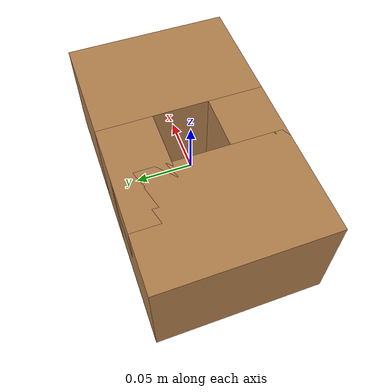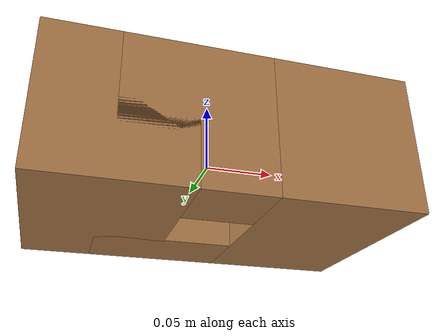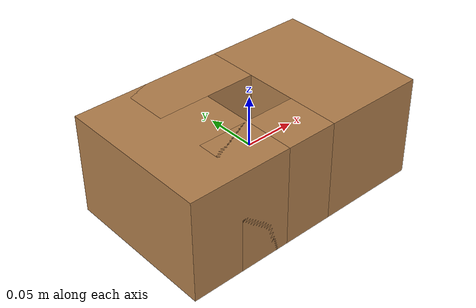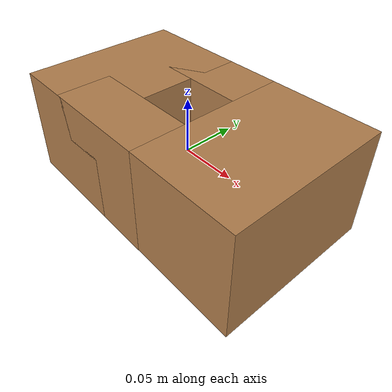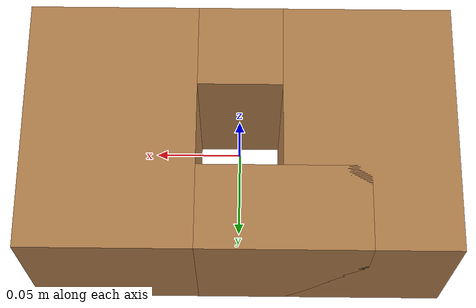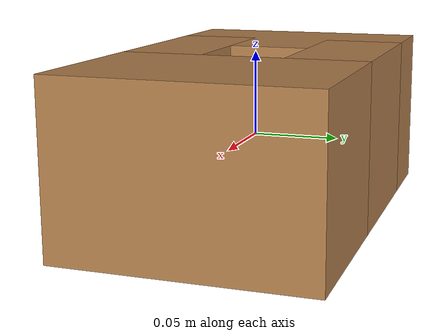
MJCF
<mujoco model="insertion_hole1">
  <asset>
    <!-- Scaled down since it was exported in "millimeters" in solidworks. -->
    <texture file="../textures/red-wood.png" type="cube" name="red-wood" />
    <material name="plate_mat" texture="red-wood" texrepeat="3 3" specular="0.4" shininess="0.1"/>
  </asset>
  <worldbody>
    <body>
      <body name="object" euler="0 0 0">
        <!-- TODO: Figure out what the right parameters/materials/friction are here -->
        <geom pos="-0.075 0.0 0" size="0.05 0.075 0.05" type="box" density="100000" group="0" material="plate_mat" />
        <geom pos="0.075 0.0  0" size="0.05 0.075 0.05" type="box" density="100000" group="0" material="plate_mat" />
        <geom pos="-0.025 0.05 0" size="0.05 0.025 0.05" type="box" density="100000" group="0" material="plate_mat" />
        <geom pos="-0.025 -0.05 0" size="0.05 0.025 0.05" type="box" density="100000" group="0" material="plate_mat" />
      </body>
      <!-- TODO: Update with dimensions of Insertion Objects -->
      <site rgba="0 0 0 0" size="0.005" pos="0 0 -0.02" name="bottom_site"/>
      <site rgba="0 0 0 0" size="0.005" pos="0 0 0.02" name="top_site"/>
      <site rgba="0 0 0 0" size="0.005" pos="0.25 0.25 0.1" name="horizontal_radius_site"/>
    </body>
  </worldbody>
</mujoco>
